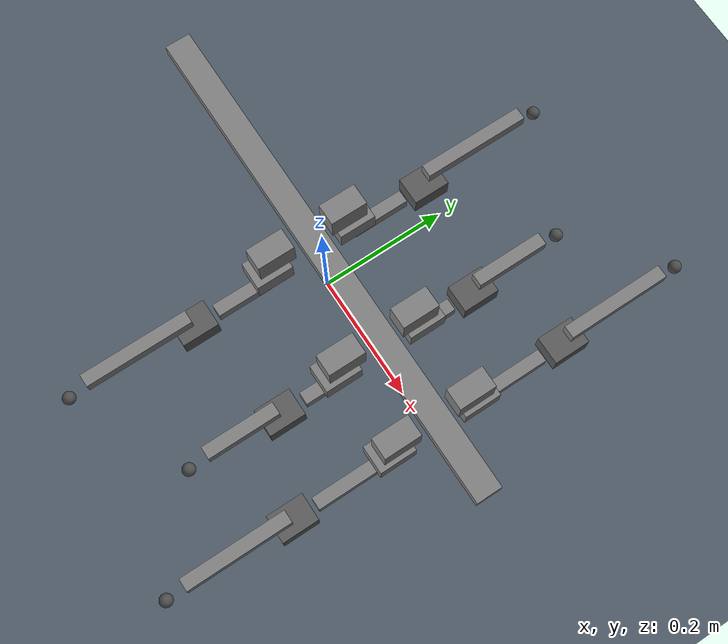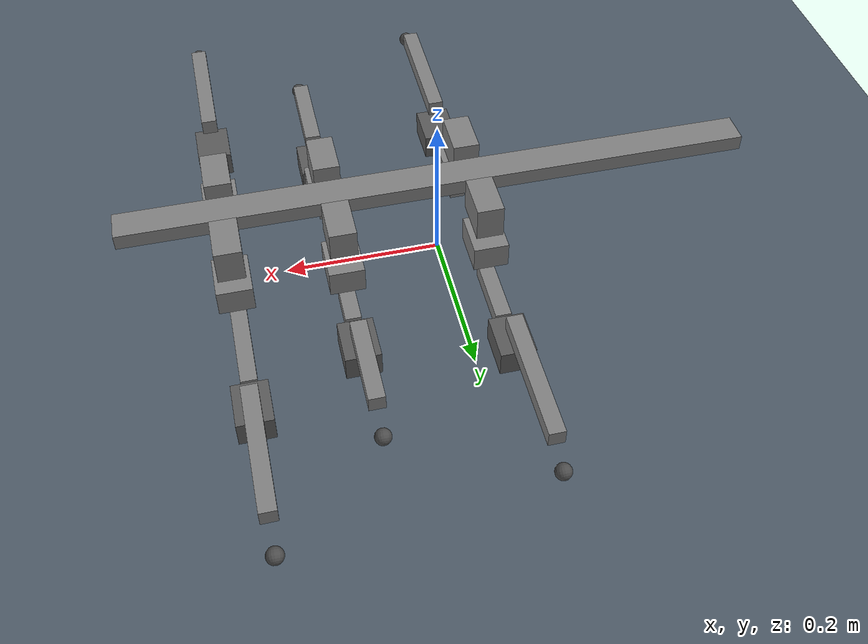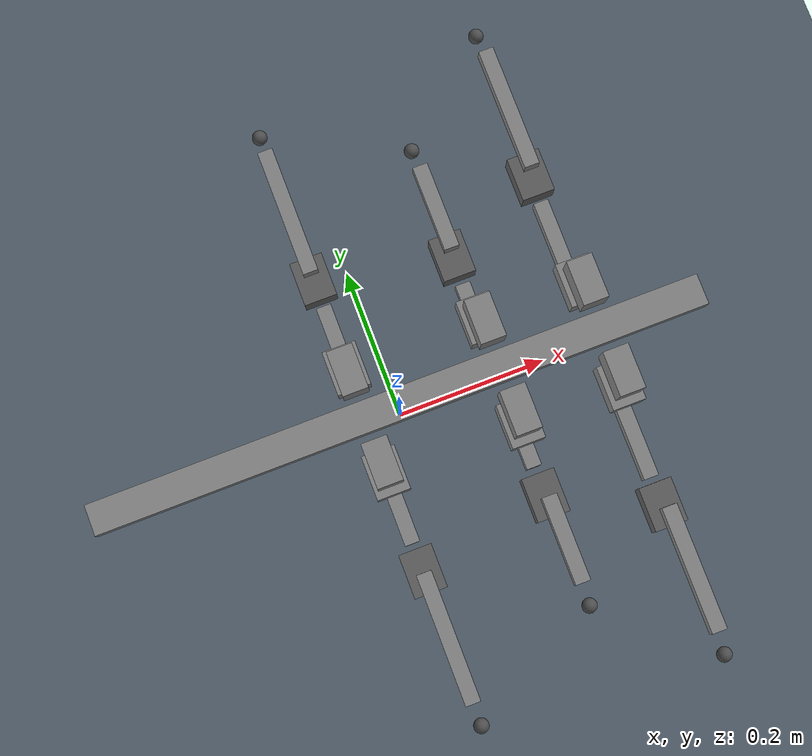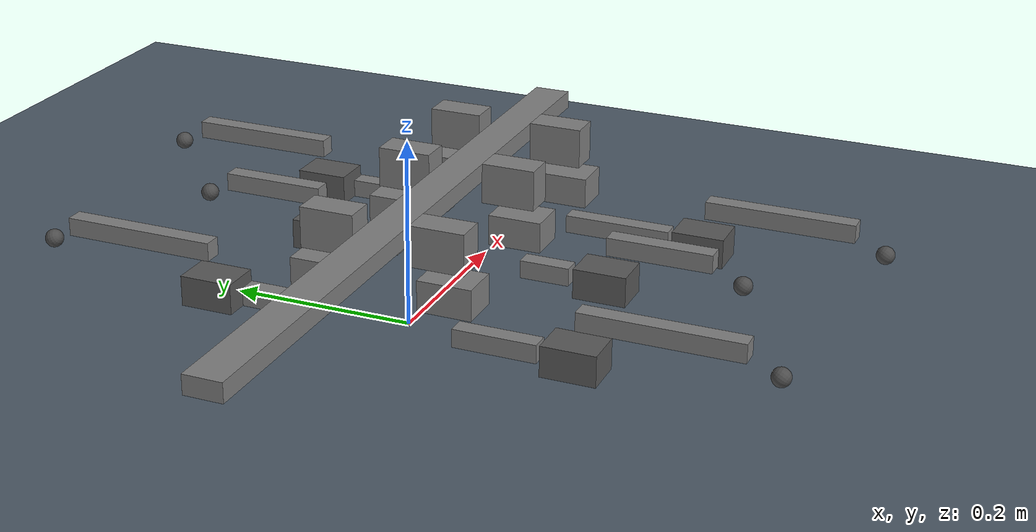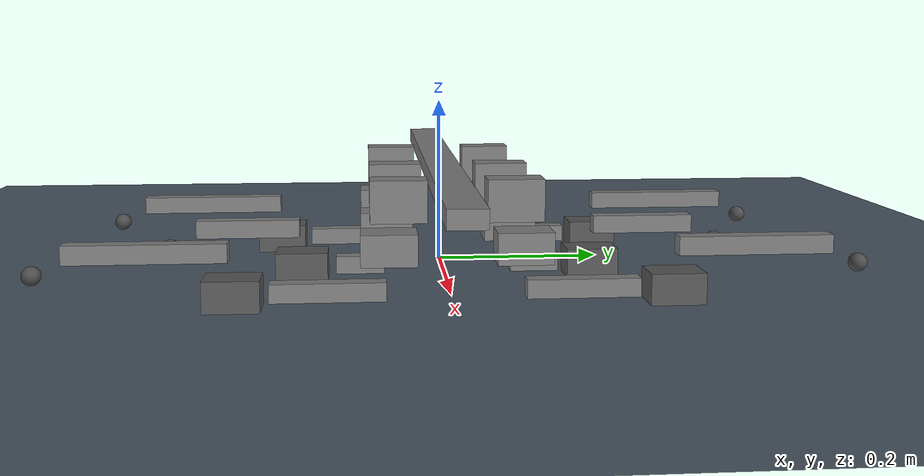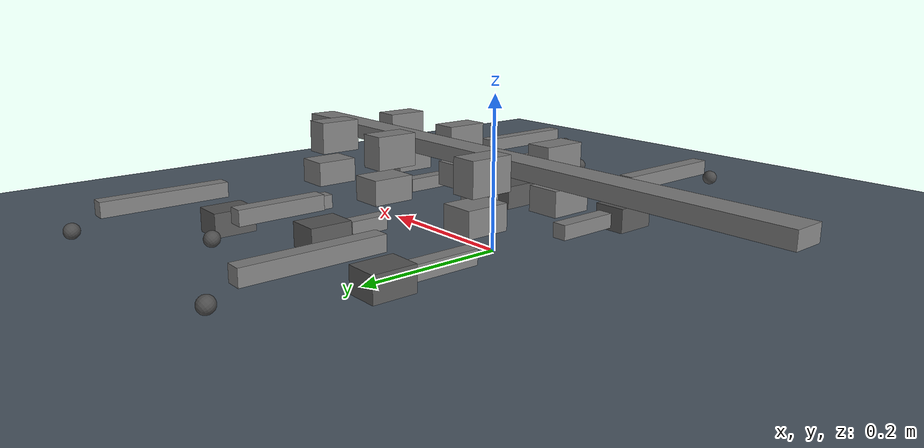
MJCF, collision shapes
<mujoco model="body_carbon_rod">
  <compiler angle="radian" meshdir="meshes/" />
  <option integrator="implicitfast" />
  <asset>
    <mesh name="Red_mirror_model_walking_FL_link_1_vis_1" file="Red_mirror_model_walking_FL_link_1_vis_1.msh" />
    <mesh name="Red_mirror_model_walking_FL_link_2c1_vis_1" file="Red_mirror_model_walking_FL_link_2c1_vis_1.msh" />
    <mesh name="Red_mirror_model_walking_FL_link_2c2_vis_1" file="Red_mirror_model_walking_FL_link_2c2_vis_1.msh" />
    <mesh name="Red_mirror_model_walking_FL_toe_vis_1" file="Red_mirror_model_walking_FL_toe_vis_1.msh" />
    <mesh name="Red_mirror_model_walking_FL_link_3c1_vis_1" file="Red_mirror_model_walking_FL_link_3c1_vis_1.msh" />
    <mesh name="Red_mirror_model_walking_ML_link_1_vis_1" file="Red_mirror_model_walking_ML_link_1_vis_1.msh" />
    <mesh name="Red_mirror_model_walking_ML_link_2c1_vis_1" file="Red_mirror_model_walking_ML_link_2c1_vis_1.msh" />
    <mesh name="Red_mirror_model_walking_ML_link_2c2_vis_1" file="Red_mirror_model_walking_ML_link_2c2_vis_1.msh" />
    <mesh name="Red_mirror_model_walking_ML_link_3c1_vis_1" file="Red_mirror_model_walking_ML_link_3c1_vis_1.msh" />
    <mesh name="Red_mirror_model_walking_ML_toe_vis_1" file="Red_mirror_model_walking_ML_toe_vis_1.msh" />
    <mesh name="Red_mirror_model_walking_HL_link_1_vis_1" file="Red_mirror_model_walking_HL_link_1_vis_1.msh" />
    <mesh name="Red_mirror_model_walking_HL_link_2c1_vis_1" file="Red_mirror_model_walking_HL_link_2c1_vis_1.msh" />
    <mesh name="Red_mirror_model_walking_HL_link_2c2_vis_1" file="Red_mirror_model_walking_HL_link_2c2_vis_1.msh" />
    <mesh name="Red_mirror_model_walking_HL_link_3c1_vis_1" file="Red_mirror_model_walking_HL_link_3c1_vis_1.msh" />
    <mesh name="Red_mirror_model_walking_HL_toe_vis_1" file="Red_mirror_model_walking_HL_toe_vis_1.msh" />
    <mesh name="Red_mirror_model_walking_FL_link_1_2_vis_1" file="Red_mirror_model_walking_FL_link_1_2_vis_1.msh" />
    <mesh name="Red_mirror_model_walking_FL_link_2c1_2_vis_1" file="Red_mirror_model_walking_FL_link_2c1_2_vis_1.msh" />
    <mesh name="Red_mirror_model_walking_FL_link_2c2_2_vis_1" file="Red_mirror_model_walking_FL_link_2c2_2_vis_1.msh" />
    <mesh name="Red_mirror_model_walking_FR_link_3c1_vis_1" file="Red_mirror_model_walking_FR_link_3c1_vis_1.msh" />
    <mesh name="Red_mirror_model_walking_FR_toe_vis_1" file="Red_mirror_model_walking_FR_toe_vis_1.msh" />
    <mesh name="Red_mirror_model_walking_ML_link_1_2_vis_1" file="Red_mirror_model_walking_ML_link_1_2_vis_1.msh" />
    <mesh name="Red_mirror_model_walking_ML_link_2c1_2_vis_1" file="Red_mirror_model_walking_ML_link_2c1_2_vis_1.msh" />
    <mesh name="Red_mirror_model_walking_ML_link_2c2_2_vis_1" file="Red_mirror_model_walking_ML_link_2c2_2_vis_1.msh" />
    <mesh name="Red_mirror_model_walking_MR_link_3c1_vis_1" file="Red_mirror_model_walking_MR_link_3c1_vis_1.msh" />
    <mesh name="Red_mirror_model_walking_MR_toe_vis_1" file="Red_mirror_model_walking_MR_toe_vis_1.msh" />
    <mesh name="Red_mirror_model_walking_HL_link_1_2_vis_1" file="Red_mirror_model_walking_HL_link_1_2_vis_1.msh" />
    <mesh name="Red_mirror_model_walking_HL_link_2c1_2_vis_1" file="Red_mirror_model_walking_HL_link_2c1_2_vis_1.msh" />
    <mesh name="Red_mirror_model_walking_HL_link_2c2_2_vis_1" file="Red_mirror_model_walking_HL_link_2c2_2_vis_1.msh" />
    <mesh name="Red_mirror_model_walking_HL_link_3c1_2_vis_1" file="Red_mirror_model_walking_HL_link_3c1_2_vis_1.msh" />
    <mesh name="Red_mirror_model_walking_HL_toe_2_vis_1" file="Red_mirror_model_walking_HL_toe_2_vis_1.msh" />
    <texture name="grid" type="2d" builtin="checker" rgb1="0.35 0.4 0.45" rgb2="0.25 0.3 0.35" width="512" height="512" />
    <material name="grid" texture="grid" texrepeat="8 8" reflectance="0.1" />
    <!-- The red leg links: the web page's Body colour picker recolours this material -->
    <material name="printed" rgba="1 0.2 0.2 1" />
  </asset>
  <worldbody>
    <light name="sun" pos="0 0 3" dir="0 0 -1" directional="true" />
    <geom name="floor" type="plane" size="0 0 0.05" material="grid" />
    <body name="robot_base" pos="1.50000 0.00047 -0.13000">
      <freejoint />
      <inertial pos="-1.5 0 0.75" quat="1 -3.82669e-06 -2.1734e-06 8.3169e-12" mass="0.2" diaginertia="0.0166733 0.0166733 0.011196" />
      <geom name="body_carbon_rod" size="0.4 0.02 0.01" pos="-1.5 0 0.248" quat="-1 3.82674e-06 2.1733e-06 -2.48268e-05" type="box" />
      <geom size="0.4 0.02 0.01" pos="-1.5 0 0.248" quat="-1 3.82674e-06 2.1733e-06 -2.48268e-05" type="box" contype="0" conaffinity="0" group="1" rgba="0.4 0.4 0.4 1" density="0" />
      <body name="FL_motor_1" pos="-1.23 0.060014 0.247001" quat="-0.707107 0.707107 3.81838e-05 -3.2282e-05">
        <inertial pos="0 0 1.4e-05" quat="1 -3.33665e-06 2.48268e-05 1.82688e-06" mass="0.165" diaginertia="7.36759e-05 6.24869e-05 4.20509e-05" />
        <geom name="FL_motor_1" size="0.01675 0.02925 0.022" pos="0 0 1.4e-05" quat="0.707109 0.707104 1.8847e-05 -1.62634e-05" type="box" />
        <geom size="0.01675 0.02925 0.022" pos="0 0 1.4e-05" quat="0.707109 0.707104 1.8847e-05 -1.62634e-05" type="box" contype="0" conaffinity="0" group="1" rgba="0.35 0.35 0.35 1" density="0" />
        <body name="FL_motor_2" pos="1e-06 0 0.015414" quat="0.707109 0.707104 1.8847e-05 -1.62634e-05">
          <inertial pos="0 -0.0054 -0.0493" quat="0.5 0.5 -0.5 0.5" mass="0.165" diaginertia="0.0007425 0.000627 0.0004125" />
          <joint name="TL0" range="-1.5708 1.5708" actuatorfrcrange="-10 10" />
          <geom name="FL_motor_2" size="0.01675 0.02925 0.022" pos="0 -0.0054 -0.0493" quat="0.707107 0 -0.707107 0" type="box" />
          <geom size="0.01675 0.02925 0.022" pos="0 -0.0054 -0.0493" quat="0.707107 0 -0.707107 0" type="box" contype="0" conaffinity="0" group="1" rgba="0.35 0.35 0.35 1" density="0" />
          <geom name="FL_link_1" quat="-1 1.73205e-07 1.73205e-07 -1.73205e-07" type="mesh" contype="0" conaffinity="0" group="1" material="printed" density="0" mesh="Red_mirror_model_walking_FL_link_1_vis_1" />
          <body name="FL_link_2c1" pos="0 0.01 -0.0493" quat="0.707107 0 -0.707107 0">
            <inertial pos="0 0 0" mass="0.05" diaginertia="0.0001 0.0001 0.0001" />
            <joint name="CL0" />
            <geom name="FL_link_2c1" quat="0 -1 -1.73205e-07 -1.73205e-07" type="mesh" contype="0" conaffinity="0" group="1" rgba="1 1 1 1" density="0" mesh="Red_mirror_model_walking_FL_link_2c1_vis_1" />
            <geom name="FL_link_2c2" pos="-0.0448 0.0476 0" quat="-0.707107 -0.707107 0 -2.44949e-07" type="mesh" contype="0" conaffinity="0" group="1" material="printed" density="0" mesh="Red_mirror_model_walking_FL_link_2c2_vis_1" />
            <geom name="FL_motor_3" size="0.01 0.01 0.06" pos="-0.0448 0.0476 0" quat="0.5 0.5 0.5 -0.5" type="box" contype="0" conaffinity="0" group="1" density="0" />
            <geom size="0.01675 0.02925 0.022" pos="-0.045 0.1446 0" quat="-1 -1.73205e-07 1.73205e-07 1.73205e-07" type="box" contype="0" conaffinity="0" group="1" rgba="0.35 0.35 0.35 1" density="0" />
            <body name="FL_link_3" pos="-0.045 0.16 0" quat="-1 -1.73205e-07 1.73205e-07 1.73205e-07">
              <inertial pos="0 0 0" mass="0.05" diaginertia="0.0001 0.0001 0.0001" />
              <joint name="FL0" range="-3.14159 3.14159" actuatorfrcrange="-10 10" />
              <geom name="FL_link_3" size="0.01 0.01 0.0825" pos="0.0432 0.0696 0" quat="0.5 0.5 0.5 -0.5" type="box" contype="0" conaffinity="0" group="1" density="0" />
              <geom name="FL_toe" pos="0.0213 0.1846 0" quat="0.612372 0.353554 0.612372 -0.353553" type="mesh" contype="0" conaffinity="0" group="1" rgba="1 1 1 1" density="0" mesh="Red_mirror_model_walking_FL_toe_vis_1" />
              <geom name="FL_link_3c1" quat="0 1.73205e-07 -1.73205e-07 1" type="mesh" contype="0" conaffinity="0" group="1" rgba="1 1 1 1" density="0" mesh="Red_mirror_model_walking_FL_link_3c1_vis_1" />
              <body name="FOOT_L0" pos="0.0343 0.162083 0" quat="0.612372 0.353554 0.612372 -0.353553">
                <inertial pos="0 0 0" mass="0.05" diaginertia="0.0001 0.0001 0.0001" />
                <geom name="FOOT_L0" size="0.01" pos="0 -0.0005 -0.025134" quat="1 1.73205e-07 -1.73205e-07 1.73205e-07" group="1" rgba="0.3 0.3 0.3 1" density="0" />
              </body>
            </body>
          </body>
        </body>
      </body>
      <body name="ML_motor_1" pos="-1.39 0.060006 0.247" quat="-0.707107 0.707107 3.81838e-05 -3.2282e-05">
        <inertial pos="0.025 0 6e-06" quat="1 -3.33665e-06 2.48268e-05 1.82688e-06" mass="0.165" diaginertia="7.36759e-05 6.24869e-05 4.20509e-05" />
        <geom name="ML_motor_1" size="0.01675 0.02925 0.022" pos="0.025 0 6e-06" quat="0.707109 0.707104 1.8847e-05 -1.62634e-05" type="box" />
        <geom size="0.01675 0.02925 0.022" pos="0.025 0 6e-06" quat="0.707109 0.707104 1.8847e-05 -1.62634e-05" type="box" contype="0" conaffinity="0" group="1" rgba="0.35 0.35 0.35 1" density="0" />
        <body name="ML_motor_2" pos="0.025001 0 0.015406" quat="0.707109 0.707104 1.8847e-05 -1.62634e-05">
          <inertial pos="0 -0.0054 -0.0493" quat="0.5 0.5 -0.5 0.5" mass="0.165" diaginertia="0.0007425 0.000627 0.0004125" />
          <joint name="TL1" range="-1.5708 1.5708" actuatorfrcrange="-10 10" />
          <geom name="ML_motor_2" size="0.01675 0.02925 0.022" pos="0 -0.0054 -0.0493" quat="0.707107 0 -0.707107 0" type="box" />
          <geom size="0.01675 0.02925 0.022" pos="0 -0.0054 -0.0493" quat="0.707107 0 -0.707107 0" type="box" contype="0" conaffinity="0" group="1" rgba="0.35 0.35 0.35 1" density="0" />
          <geom name="ML_link_1" quat="1 1.73205e-07 -1.73205e-07 1.73205e-07" type="mesh" contype="0" conaffinity="0" group="1" material="printed" density="0" mesh="Red_mirror_model_walking_ML_link_1_vis_1" />
          <body name="ML_link_2c1" pos="0 0.01 -0.0493" quat="0.707107 0 -0.707107 0">
            <inertial pos="0 0 0" mass="0.05" diaginertia="0.0001 0.0001 0.0001" />
            <joint name="CL1" />
            <geom name="ML_link_2c1" quat="0 -1 -1.73205e-07 -1.73205e-07" type="mesh" contype="0" conaffinity="0" group="1" rgba="1 1 1 1" density="0" mesh="Red_mirror_model_walking_ML_link_2c1_vis_1" />
            <geom name="ML_link_2c2" pos="-0.0448 -0.0164 0" quat="-0.707107 -0.707107 0 -2.44949e-07" type="mesh" contype="0" conaffinity="0" group="1" material="printed" density="0" mesh="Red_mirror_model_walking_ML_link_2c2_vis_1" />
            <geom name="ML_motor_3" size="0.01 0.01 0.0275" pos="-0.0448 0.0146 0" quat="0.5 0.5 0.5 -0.5" type="box" contype="0" conaffinity="0" group="1" density="0" />
            <geom size="0.01675 0.02925 0.022" pos="-0.045 0.0806 0" quat="-1 -1.73205e-07 1.73205e-07 1.73205e-07" type="box" contype="0" conaffinity="0" group="1" rgba="0.35 0.35 0.35 1" density="0" />
            <body name="ML_link_3c1" pos="-0.045 0.096 0" quat="-1 -1.73205e-07 1.73205e-07 1.73205e-07">
              <inertial pos="0 0 0" mass="0.05" diaginertia="0.0001 0.0001 0.0001" />
              <joint name="FL1" />
              <geom name="ML_link_3c1" quat="0 1.73205e-07 -1.73205e-07 1" type="mesh" contype="0" conaffinity="0" group="1" rgba="1 1 1 1" density="0" mesh="Red_mirror_model_walking_ML_link_3c1_vis_1" />
              <geom name="ML_toe" pos="0.0213 0.1336 0" quat="0.612372 0.353554 0.612372 -0.353553" type="mesh" contype="0" conaffinity="0" group="1" rgba="1 1 1 1" density="0" mesh="Red_mirror_model_walking_ML_toe_vis_1" />
              <geom name="ML_link_3" size="0.01 0.01 0.0575" pos="0.0432 0.0446 0" quat="0.5 0.5 0.5 -0.5" type="box" contype="0" conaffinity="0" group="1" density="0" />
              <body name="FOOT_L1" pos="0.0322 0.114961 0" quat="0.613354 0.351839 0.613357 -0.351851">
                <inertial pos="0 0 0" mass="0.05" diaginertia="0.0001 0.0001 0.0001" />
                <geom name="FOOT_L1" size="0.01" pos="0 0 -0.019592" quat="-1 1.73205e-07 1.73205e-07 -1.73205e-07" group="1" rgba="0.3 0.3 0.3 1" density="0" />
              </body>
            </body>
          </body>
        </body>
      </body>
      <body name="HL_motor_1" pos="-1.57 0.059997 0.246999" quat="-0.707107 0.707107 3.81838e-05 -3.2282e-05">
        <inertial pos="0.025 0 0" quat="1 -3.33665e-06 2.48268e-05 1.82688e-06" mass="0.165" diaginertia="7.36759e-05 6.24869e-05 4.20509e-05" />
        <geom name="HL_motor_1" size="0.01675 0.02925 0.022" pos="0.025 0 0" quat="0.707109 0.707104 1.8847e-05 -1.62634e-05" type="box" />
        <geom size="0.01675 0.02925 0.022" pos="0.025 0 0" quat="0.707109 0.707104 1.8847e-05 -1.62634e-05" type="box" contype="0" conaffinity="0" group="1" rgba="0.35 0.35 0.35 1" density="0" />
        <body name="HL_motor_2" pos="0.025001 0 0.0154" quat="0.707109 0.707104 1.8847e-05 -1.62634e-05">
          <inertial pos="0 -0.0054 -0.0493" quat="0.5 0.5 -0.5 0.5" mass="0.165" diaginertia="0.0007425 0.000627 0.0004125" />
          <joint name="TL2" range="-1.5708 1.5708" actuatorfrcrange="-10 10" />
          <geom name="HL_motor_2" size="0.01675 0.02925 0.022" pos="0 -0.0054 -0.0493" quat="0.707107 0 -0.707107 0" type="box" />
          <geom size="0.01675 0.02925 0.022" pos="0 -0.0054 -0.0493" quat="0.707107 0 -0.707107 0" type="box" contype="0" conaffinity="0" group="1" rgba="0.35 0.35 0.35 1" density="0" />
          <geom name="HL_link_1" quat="-1 1.73205e-07 1.73205e-07 -1.73205e-07" type="mesh" contype="0" conaffinity="0" group="1" material="printed" density="0" mesh="Red_mirror_model_walking_HL_link_1_vis_1" />
          <body name="HL_link_2c1" pos="0 0.01 -0.0493" quat="0.707107 0 -0.707107 0">
            <inertial pos="0 0 0" mass="0.05" diaginertia="0.0001 0.0001 0.0001" />
            <joint name="CL2" />
            <geom name="HL_link_2c1" quat="0 -1 -1.73205e-07 -1.73205e-07" type="mesh" contype="0" conaffinity="0" group="1" rgba="1 1 1 1" density="0" mesh="Red_mirror_model_walking_HL_link_2c1_vis_1" />
            <geom name="HL_link_2c2" pos="-0.0448 0.0176 0" quat="-0.707107 -0.707107 0 -2.44949e-07" type="mesh" contype="0" conaffinity="0" group="1" material="printed" density="0" mesh="Red_mirror_model_walking_HL_link_2c2_vis_1" />
            <geom name="HL_motor_3" size="0.01 0.01 0.045" pos="-0.04493 0.033356 -0.000642" quat="0.5 0.5 0.5 -0.5" type="box" contype="0" conaffinity="0" group="1" density="0" />
            <geom size="0.01675 0.02925 0.022" pos="-0.04513 0.115356 -0.000642" quat="-1 1.73205e-07 1.73205e-07 -1.73205e-07" type="box" contype="0" conaffinity="0" group="1" rgba="0.35 0.35 0.35 1" density="0" />
            <body name="HL_link_3c1" pos="-0.04513 0.130756 -0.000642" quat="-1 1.73205e-07 1.73205e-07 -1.73205e-07">
              <inertial pos="0 0 0" mass="0.05" diaginertia="0.0001 0.0001 0.0001" />
              <joint name="FL2" />
              <geom name="HL_link_3c1" quat="0 1.73205e-07 -1.73205e-07 1" type="mesh" contype="0" conaffinity="0" group="1" rgba="1 1 1 1" density="0" mesh="Red_mirror_model_walking_HL_link_3c1_vis_1" />
              <geom name="HL_toe" pos="0.0213 0.1856 0" quat="0.612372 0.353554 0.612372 -0.353553" type="mesh" contype="0" conaffinity="0" group="1" rgba="1 1 1 1" density="0" mesh="Red_mirror_model_walking_HL_toe_vis_1" />
              <geom name="HL_link_3" size="0.01 0.01 0.085" pos="0.0432 0.0716 0" quat="0.5 0.5 0.5 -0.5" type="box" contype="0" conaffinity="0" group="1" density="0" />
              <body name="FOOT_L2" pos="0.0333 0.163815 0" quat="0.612372 0.353554 0.612372 -0.353553">
                <inertial pos="0 0 0" mass="0.05" diaginertia="0.0001 0.0001 0.0001" />
                <geom name="FOOT_L2" size="0.01" pos="0 0 -0.024" quat="-1 1.73205e-07 1.73205e-07 -1.73205e-07" group="1" rgba="0.3 0.3 0.3 1" density="0" />
              </body>
            </body>
          </body>
        </body>
      </body>
      <body name="FR_motor_1" pos="-1.23 -0.059986 0.247002" quat="-0.707107 0.707107 3.81838e-05 -3.2282e-05">
        <inertial pos="0 0 1.4e-05" quat="1 -3.33665e-06 2.51732e-05 2.00008e-06" mass="0.165" diaginertia="7.36759e-05 6.24869e-05 4.20509e-05" />
        <geom name="FR_motor_1" size="0.01675 0.02925 0.022" pos="0 0 1.4e-05" quat="-1.63859e-05 -1.92144e-05 0.707104 -0.707109" type="box" />
        <geom size="0.01675 0.02925 0.022" pos="0 0 1.4e-05" quat="-1.63859e-05 -1.92144e-05 0.707104 -0.707109" type="box" contype="0" conaffinity="0" group="1" rgba="0.35 0.35 0.35 1" density="0" />
        <body name="FR_motor_2" pos="-1e-06 0 -0.015386" quat="-1.63859e-05 -1.92144e-05 0.707104 -0.707109">
          <inertial pos="0 -0.0054 -0.0493" quat="0.5 0.5 -0.5 0.5" mass="0.165" diaginertia="0.0007425 0.000627 0.0004125" />
          <joint name="TR0" range="-1.5708 1.5708" actuatorfrcrange="-10 10" />
          <geom name="FR_motor_2" size="0.01675 0.02925 0.022" pos="0 -0.0054 -0.0493" quat="0.707107 0 -0.707107 0" type="box" />
          <geom size="0.01675 0.02925 0.022" pos="0 -0.0054 -0.0493" quat="0.707107 0 -0.707107 0" type="box" contype="0" conaffinity="0" group="1" rgba="0.35 0.35 0.35 1" density="0" />
          <geom quat="-1 1.73205e-07 1.73205e-07 -1.73205e-07" type="mesh" contype="0" conaffinity="0" group="1" material="printed" density="0" mesh="Red_mirror_model_walking_FL_link_1_2_vis_1" />
          <body name="FL_link_2c1_2" pos="0 0.01 -0.0493" quat="0.707107 0 -0.707107 0">
            <inertial pos="0 0 0" mass="0.05" diaginertia="0.0001 0.0001 0.0001" />
            <joint name="CR0" />
            <geom quat="0 -1 -1.73205e-07 -1.73205e-07" type="mesh" contype="0" conaffinity="0" group="1" rgba="1 1 1 1" density="0" mesh="Red_mirror_model_walking_FL_link_2c1_2_vis_1" />
            <geom pos="-0.0448 0.0476 0" quat="-0.707107 -0.707107 0 -2.44949e-07" type="mesh" contype="0" conaffinity="0" group="1" material="printed" density="0" mesh="Red_mirror_model_walking_FL_link_2c2_2_vis_1" />
            <geom name="FR_link_3" size="0.01 0.01 0.06" pos="-0.0448 0.0476 0" quat="0.5 0.5 0.5 -0.5" type="box" contype="0" conaffinity="0" group="1" density="0" />
            <geom size="0.01675 0.02925 0.022" pos="-0.045 0.1446 0" quat="1 1.73205e-07 -1.73205e-07 1.73205e-07" type="box" contype="0" conaffinity="0" group="1" rgba="0.35 0.35 0.35 1" density="0" />
            <body name="FR_link_3c1" pos="-0.045 0.16 0" quat="1 1.73205e-07 -1.73205e-07 1.73205e-07">
              <inertial pos="0 0 0" mass="0.05" diaginertia="0.0001 0.0001 0.0001" />
              <joint name="FR0" />
              <geom name="FR_link_3c1" quat="0 1.73205e-07 -1.73205e-07 1" type="mesh" contype="0" conaffinity="0" group="1" rgba="1 1 1 1" density="0" mesh="Red_mirror_model_walking_FR_link_3c1_vis_1" />
              <geom name="FR_toe" pos="0.0213 0.1856 0" quat="0.612372 0.353554 0.612372 -0.353553" type="mesh" contype="0" conaffinity="0" group="1" rgba="1 1 1 1" density="0" mesh="Red_mirror_model_walking_FR_toe_vis_1" />
              <geom size="0.01 0.01 0.0825" pos="0.0432 0.0706 0" quat="0.5 0.5 0.5 -0.5" type="box" contype="0" conaffinity="0" group="1" density="0" />
              <body name="FOOT_R0" pos="0.0333 0.163815 0" quat="0.612372 0.353554 0.612372 -0.353553">
                <inertial pos="0 0 0" mass="0.05" diaginertia="0.0001 0.0001 0.0001" />
                <geom name="FOOT_R0" size="0.01" pos="0 0 -0.024" quat="1 1.73205e-07 -1.73205e-07 1.73205e-07" group="1" rgba="0.3 0.3 0.3 1" density="0" />
              </body>
            </body>
          </body>
        </body>
      </body>
      <body name="MR_motor_1" pos="-1.39 -0.059994 0.247001" quat="-0.707107 0.707107 3.81838e-05 -3.2282e-05">
        <inertial pos="0.025 0 6e-06" quat="1 -3.33665e-06 2.51732e-05 2.00008e-06" mass="0.165" diaginertia="7.36759e-05 6.24869e-05 4.20509e-05" />
        <geom name="MR_motor_1" size="0.01675 0.02925 0.022" pos="0.025 0 6e-06" quat="-1.63859e-05 -1.92144e-05 0.707104 -0.707109" type="box" />
        <geom size="0.01675 0.02925 0.022" pos="0.025 0 6e-06" quat="-1.63859e-05 -1.92144e-05 0.707104 -0.707109" type="box" contype="0" conaffinity="0" group="1" rgba="0.35 0.35 0.35 1" density="0" />
        <body name="MR_motor_2" pos="0.024999 0 -0.015394" quat="-1.63859e-05 -1.92144e-05 0.707104 -0.707109">
          <inertial pos="0 -0.0054 -0.0493" quat="0.5 0.5 -0.5 0.5" mass="0.165" diaginertia="0.0007425 0.000627 0.0004125" />
          <joint name="TR1" range="-1.5708 1.5708" actuatorfrcrange="-10 10" />
          <geom name="MR_motor_2" size="0.01675 0.02925 0.022" pos="0 -0.0054 -0.0493" quat="0.707107 0 -0.707107 0" type="box" />
          <geom size="0.01675 0.02925 0.022" pos="0 -0.0054 -0.0493" quat="0.707107 0 -0.707107 0" type="box" contype="0" conaffinity="0" group="1" rgba="0.35 0.35 0.35 1" density="0" />
          <geom quat="-1 -1.73205e-07 1.73205e-07 1.73205e-07" type="mesh" contype="0" conaffinity="0" group="1" material="printed" density="0" mesh="Red_mirror_model_walking_ML_link_1_2_vis_1" />
          <body name="ML_link_2c1_2" pos="0 0.01 -0.0493" quat="0.707107 0 -0.707107 0">
            <inertial pos="0 0 0" mass="0.05" diaginertia="0.0001 0.0001 0.0001" />
            <joint name="CR1" />
            <geom quat="0 1 -1.73205e-07 1.73205e-07" type="mesh" contype="0" conaffinity="0" group="1" rgba="1 1 1 1" density="0" mesh="Red_mirror_model_walking_ML_link_2c1_2_vis_1" />
            <geom pos="-0.0448 -0.0164 0" quat="-0.707107 -0.707107 0 -2.44949e-07" type="mesh" contype="0" conaffinity="0" group="1" material="printed" density="0" mesh="Red_mirror_model_walking_ML_link_2c2_2_vis_1" />
            <geom size="0.01 0.01 0.0275" pos="-0.0448 0.0146 0" quat="0.5 0.5 0.5 -0.5" type="box" contype="0" conaffinity="0" group="1" density="0" />
            <geom size="0.01675 0.02925 0.022" pos="-0.045 0.0806 0" quat="-1 1.73205e-07 1.73205e-07 -1.73205e-07" type="box" contype="0" conaffinity="0" group="1" rgba="0.35 0.35 0.35 1" density="0" />
            <body name="MR_link_3c1" pos="-0.045 0.096 0" quat="-1 1.73205e-07 1.73205e-07 -1.73205e-07">
              <inertial pos="0 0 0" mass="0.05" diaginertia="0.0001 0.0001 0.0001" />
              <joint name="FR1" />
              <geom name="MR_link_3c1" quat="0 1.73205e-07 -1.73205e-07 1" type="mesh" contype="0" conaffinity="0" group="1" rgba="1 1 1 1" density="0" mesh="Red_mirror_model_walking_MR_link_3c1_vis_1" />
              <geom name="MR_toe" pos="0.0213 0.1336 0" quat="0.612372 0.353554 0.612372 -0.353553" type="mesh" contype="0" conaffinity="0" group="1" rgba="1 1 1 1" density="0" mesh="Red_mirror_model_walking_MR_toe_vis_1" />
              <geom name="MR_link_3" size="0.01 0.01 0.0575" pos="0.0432 0.0446 0" quat="0.5 0.5 0.5 -0.5" type="box" contype="0" conaffinity="0" group="1" density="0" />
              <body name="FOOT_R1" pos="0.0323 0.113547 0" quat="0.612372 0.353554 0.612372 -0.353553">
                <inertial pos="0 0 0" mass="0.05" diaginertia="0.0001 0.0001 0.0001" />
                <geom name="FOOT_R1" size="0.01" pos="0 0 -0.022" quat="1 1.73205e-07 -1.73205e-07 1.73205e-07" group="1" rgba="0.3 0.3 0.3 1" density="0" />
              </body>
            </body>
          </body>
        </body>
      </body>
      <body name="HR_motor_1" pos="-1.57 -0.060003 0.247" quat="-0.707107 0.707107 3.81838e-05 -3.2282e-05">
        <inertial pos="0.025 0 0" quat="1 -3.33665e-06 2.51732e-05 2.00008e-06" mass="0.165" diaginertia="7.36759e-05 6.24869e-05 4.20509e-05" />
        <geom name="HR_motor_1" size="0.01675 0.02925 0.022" pos="0.025 0 0" quat="-1.63859e-05 -1.92144e-05 0.707104 -0.707109" type="box" />
        <geom size="0.01675 0.02925 0.022" pos="0.025 0 0" quat="-1.63859e-05 -1.92144e-05 0.707104 -0.707109" type="box" contype="0" conaffinity="0" group="1" rgba="0.35 0.35 0.35 1" density="0" />
        <body name="HR_motor_2" pos="0.024999 0 -0.0154" quat="-1.63859e-05 -1.92144e-05 0.707104 -0.707109">
          <inertial pos="0 -0.0054 -0.0493" quat="0.5 0.5 -0.5 0.5" mass="0.165" diaginertia="0.0007425 0.000627 0.0004125" />
          <joint name="TR2" range="-1.5708 1.5708" actuatorfrcrange="-10 10" />
          <geom name="HR_motor_2" size="0.01675 0.02925 0.022" pos="0 -0.0054 -0.0493" quat="0.707107 0 -0.707107 0" type="box" />
          <geom size="0.01675 0.02925 0.022" pos="0 -0.0054 -0.0493" quat="0.707107 0 -0.707107 0" type="box" contype="0" conaffinity="0" group="1" rgba="0.35 0.35 0.35 1" density="0" />
          <geom quat="1 -1.73205e-07 -1.73205e-07 -1.73205e-07" type="mesh" contype="0" conaffinity="0" group="1" material="printed" density="0" mesh="Red_mirror_model_walking_HL_link_1_2_vis_1" />
          <body name="HL_link_2c1_2" pos="0 0.01 -0.0493" quat="0.707107 0 -0.707107 0">
            <inertial pos="0 0 0" mass="0.05" diaginertia="0.0001 0.0001 0.0001" />
            <joint name="CR2" />
            <geom quat="0 -1 -1.73205e-07 -1.73205e-07" type="mesh" contype="0" conaffinity="0" group="1" rgba="1 1 1 1" density="0" mesh="Red_mirror_model_walking_HL_link_2c1_2_vis_1" />
            <geom pos="-0.0448 0.0176 0" quat="-0.707107 -0.707107 0 -2.44949e-07" type="mesh" contype="0" conaffinity="0" group="1" material="printed" density="0" mesh="Red_mirror_model_walking_HL_link_2c2_2_vis_1" />
            <geom size="0.01 0.01 0.045" pos="-0.0448 0.0326 0" quat="0.5 0.5 0.5 -0.5" type="box" contype="0" conaffinity="0" group="1" density="0" />
            <geom size="0.01675 0.02925 0.022" pos="-0.045 0.1146 0" quat="-1 -1.73205e-07 1.73205e-07 1.73205e-07" type="box" contype="0" conaffinity="0" group="1" rgba="0.35 0.35 0.35 1" density="0" />
            <body name="HL_link_3c1_2" pos="-0.045 0.13 0" quat="-1 -1.73205e-07 1.73205e-07 1.73205e-07">
              <inertial pos="0 0 0" mass="0.05" diaginertia="0.0001 0.0001 0.0001" />
              <joint name="FR2" />
              <geom quat="0 1.73205e-07 -1.73205e-07 1" type="mesh" contype="0" conaffinity="0" group="1" rgba="1 1 1 1" density="0" mesh="Red_mirror_model_walking_HL_link_3c1_2_vis_1" />
              <geom pos="0.0213 0.1886 0" quat="0.612372 0.353554 0.612372 -0.353553" type="mesh" contype="0" conaffinity="0" group="1" rgba="1 1 1 1" density="0" mesh="Red_mirror_model_walking_HL_toe_2_vis_1" />
              <geom name="HR_link_3" size="0.01 0.01 0.085" pos="0.0432 0.0716 0" quat="0.5 0.5 0.5 -0.5" type="box" contype="0" conaffinity="0" group="1" density="0" />
              <body name="FOOT_R2" pos="0.0333 0.166815 0" quat="0.612372 0.353554 0.612372 -0.353553">
                <inertial pos="0 0 0" mass="0.05" diaginertia="0.0001 0.0001 0.0001" />
                <geom name="FOOT_R2" size="0.01" pos="0 0 -0.024" quat="-1 -1.73205e-07 1.73205e-07 1.73205e-07" group="1" rgba="0.3 0.3 0.3 1" density="0" />
              </body>
            </body>
          </body>
        </body>
      </body>
    </body>
  </worldbody>
  <actuator>
    <position name="TL0" joint="TL0" kp="10.0" kv="0.5" ctrlrange="-1.5708 1.5708" />
    <position name="CL0" joint="CL0" kp="10.0" kv="0.5" />
    <position name="FL0" joint="FL0" kp="10.0" kv="0.5" ctrlrange="-3.14159 3.14159" />
    <position name="TL1" joint="TL1" kp="10.0" kv="0.5" ctrlrange="-1.5708 1.5708" />
    <position name="CL1" joint="CL1" kp="10.0" kv="0.5" />
    <position name="FL1" joint="FL1" kp="10.0" kv="0.5" />
    <position name="TL2" joint="TL2" kp="10.0" kv="0.5" ctrlrange="-1.5708 1.5708" />
    <position name="CL2" joint="CL2" kp="10.0" kv="0.5" />
    <position name="FL2" joint="FL2" kp="10.0" kv="0.5" />
    <position name="TR0" joint="TR0" kp="10.0" kv="0.5" ctrlrange="-1.5708 1.5708" />
    <position name="CR0" joint="CR0" kp="10.0" kv="0.5" />
    <position name="FR0" joint="FR0" kp="10.0" kv="0.5" />
    <position name="TR1" joint="TR1" kp="10.0" kv="0.5" ctrlrange="-1.5708 1.5708" />
    <position name="CR1" joint="CR1" kp="10.0" kv="0.5" />
    <position name="FR1" joint="FR1" kp="10.0" kv="0.5" />
    <position name="TR2" joint="TR2" kp="10.0" kv="0.5" ctrlrange="-1.5708 1.5708" />
    <position name="CR2" joint="CR2" kp="10.0" kv="0.5" />
    <position name="FR2" joint="FR2" kp="10.0" kv="0.5" />
  </actuator>
  <keyframe>
    <key name="stand" qpos="1.5 0.00047 -0.12741 0.99991 -0.00136 0.01301 -0.00014 -0.7978 -0.62685 1.64411 0.00159 -0.55802 1.6732 0.80256 -0.62334 1.6387 0.79732 -0.62485 1.64471 -0.00154 -0.55639 1.67394 -0.80212 -0.62753 1.63557" ctrl="-0.8 -0.5 1.7 0 -0.5 1.7 0.8 -0.5 1.7 0.8 -0.5 1.7 0 -0.5 1.7 -0.8 -0.5 1.7"/>
  </keyframe>
</mujoco>
